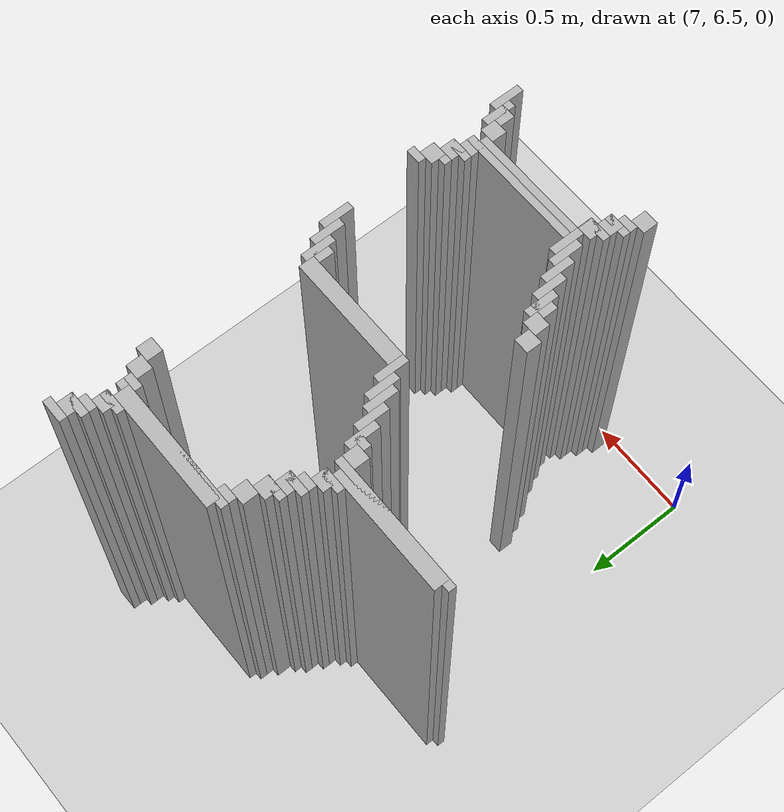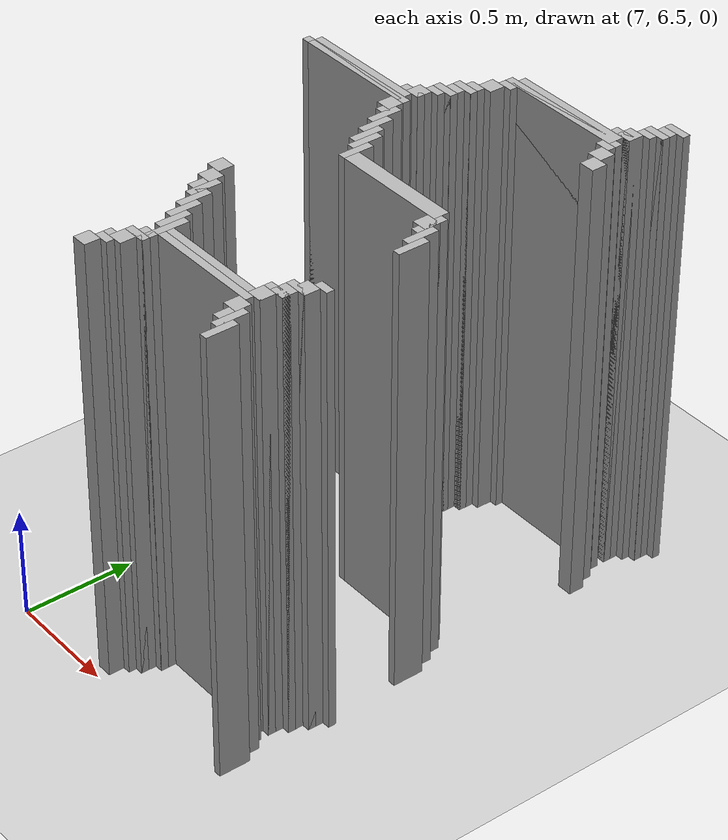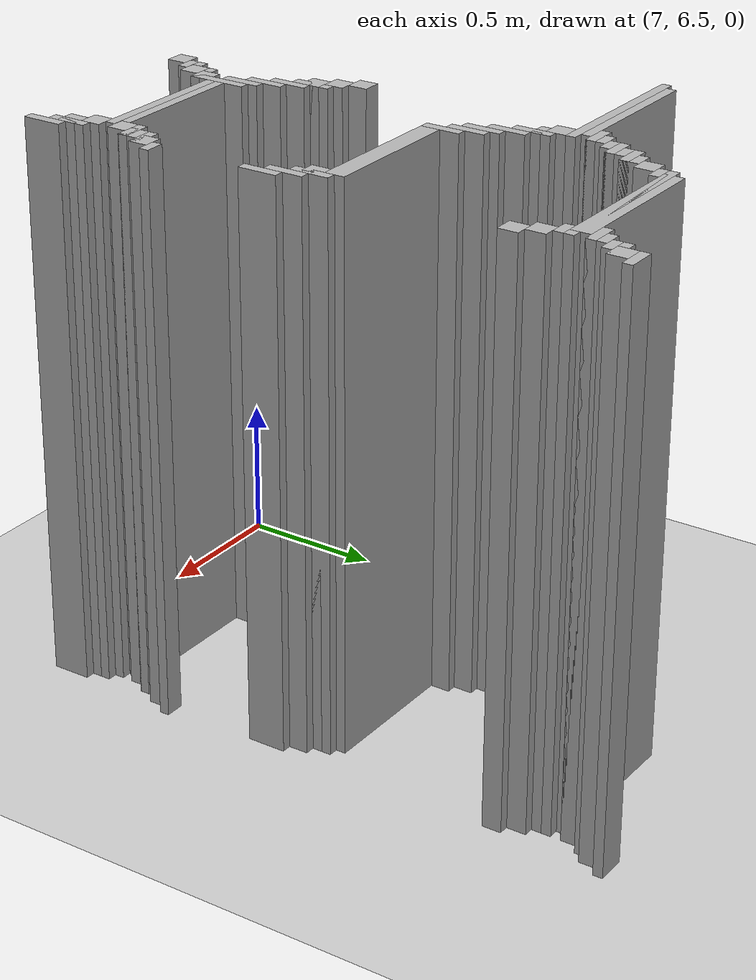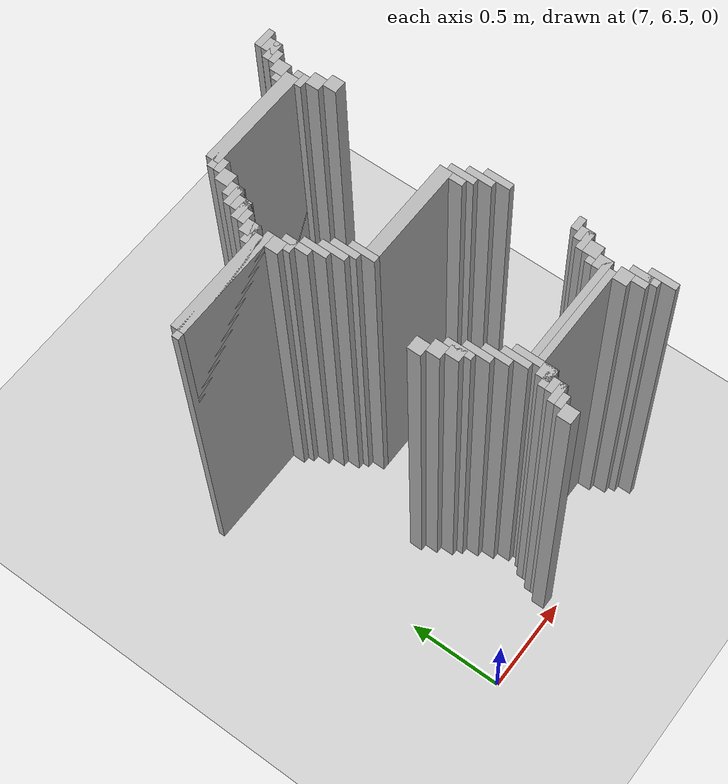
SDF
<sdf version="1.6">
 <world name="slam_world">
  <model name="ground_plane">
   <static>true</static>
   <link name="link">
    <collision name="collision">
     <geometry><plane><normal>0 0 1</normal><size>100 100</size></plane></geometry>
    </collision>
    <visual name="visual">
     <geometry><plane><normal>0 0 1</normal><size>100 100</size></plane></geometry>
     <material>
      <ambient>0.8 0.8 0.8 1</ambient>
      <diffuse>0.8 0.8 0.8 1</diffuse>
      <specular>0.8 0.8 0.8 1</specular>
     </material>
    </visual>
   </link>
  </model>
  <model name="wall_2896">
   <static>true</static>
   <pose>8.230858468677495 8.718097447795824 1.0 0 0 0</pose>
   <link name="link">
    <collision name="collision">
     <geometry><box><size>0.10440835266821345 0.03480278422273782 2.0</size></box></geometry>
    </collision>
    <visual name="visual">
     <geometry><box><size>0.10440835266821345 0.03480278422273782 2.0</size></box></geometry>
     <material><ambient>0.5 0.5 0.5 1</ambient><diffuse>0.7 0.7 0.7 1</diffuse></material>
    </visual>
   </link>
  </model>
  <model name="wall_2910">
   <static>true</static>
   <pose>8.213457076566124 8.665893271461716 1.0 0 0 0</pose>
   <link name="link">
    <collision name="collision">
     <geometry><box><size>0.06960556844547564 0.06960556844547564 2.0</size></box></geometry>
    </collision>
    <visual name="visual">
     <geometry><box><size>0.06960556844547564 0.06960556844547564 2.0</size></box></geometry>
     <material><ambient>0.5 0.5 0.5 1</ambient><diffuse>0.7 0.7 0.7 1</diffuse></material>
    </visual>
   </link>
  </model>
  <model name="wall_2922">
   <static>true</static>
   <pose>8.196055684454755 8.648491879350347 1.0 0 0 0</pose>
   <link name="link">
    <collision name="collision">
     <geometry><box><size>0.10440835266821345 0.03480278422273782 2.0</size></box></geometry>
    </collision>
    <visual name="visual">
     <geometry><box><size>0.10440835266821345 0.03480278422273782 2.0</size></box></geometry>
     <material><ambient>0.5 0.5 0.5 1</ambient><diffuse>0.7 0.7 0.7 1</diffuse></material>
    </visual>
   </link>
  </model>
  <model name="wall_2932">
   <static>true</static>
   <pose>8.178654292343387 8.61368909512761 1.0 0 0 0</pose>
   <link name="link">
    <collision name="collision">
     <geometry><box><size>0.06960556844547564 0.03480278422273782 2.0</size></box></geometry>
    </collision>
    <visual name="visual">
     <geometry><box><size>0.06960556844547564 0.03480278422273782 2.0</size></box></geometry>
     <material><ambient>0.5 0.5 0.5 1</ambient><diffuse>0.7 0.7 0.7 1</diffuse></material>
    </visual>
   </link>
  </model>
  <model name="wall_2943">
   <static>true</static>
   <pose>8.14385150812065 8.561484918793504 1.0 0 0 0</pose>
   <link name="link">
    <collision name="collision">
     <geometry><box><size>0.06960556844547564 0.06960556844547564 2.0</size></box></geometry>
    </collision>
    <visual name="visual">
     <geometry><box><size>0.06960556844547564 0.06960556844547564 2.0</size></box></geometry>
     <material><ambient>0.5 0.5 0.5 1</ambient><diffuse>0.7 0.7 0.7 1</diffuse></material>
    </visual>
   </link>
  </model>
  <model name="wall_2958">
   <static>true</static>
   <pose>8.12645011600928 8.544083526682135 1.0 0 0 0</pose>
   <link name="link">
    <collision name="collision">
     <geometry><box><size>0.10440835266821345 0.03480278422273782 2.0</size></box></geometry>
    </collision>
    <visual name="visual">
     <geometry><box><size>0.10440835266821345 0.03480278422273782 2.0</size></box></geometry>
     <material><ambient>0.5 0.5 0.5 1</ambient><diffuse>0.7 0.7 0.7 1</diffuse></material>
    </visual>
   </link>
  </model>
  <model name="wall_2970">
   <static>true</static>
   <pose>7.865429234338746 8.491879350348027 1.0 0 0 0</pose>
   <link name="link">
    <collision name="collision">
     <geometry><box><size>0.5568445475638051 0.06960556844547564 2.0</size></box></geometry>
    </collision>
    <visual name="visual">
     <geometry><box><size>0.5568445475638051 0.06960556844547564 2.0</size></box></geometry>
     <material><ambient>0.5 0.5 0.5 1</ambient><diffuse>0.7 0.7 0.7 1</diffuse></material>
    </visual>
   </link>
  </model>
  <model name="wall_2980">
   <static>true</static>
   <pose>7.865429234338746 8.474477958236658 1.0 0 0 0</pose>
   <link name="link">
    <collision name="collision">
     <geometry><box><size>0.6264501160092807 0.03480278422273782 2.0</size></box></geometry>
    </collision>
    <visual name="visual">
     <geometry><box><size>0.6264501160092807 0.03480278422273782 2.0</size></box></geometry>
     <material><ambient>0.5 0.5 0.5 1</ambient><diffuse>0.7 0.7 0.7 1</diffuse></material>
    </visual>
   </link>
  </model>
  <model name="wall_2991">
   <static>true</static>
   <pose>7.587006960556844 8.43967517401392 1.0 0 0 0</pose>
   <link name="link">
    <collision name="collision">
     <geometry><box><size>0.06960556844547564 0.03480278422273782 2.0</size></box></geometry>
    </collision>
    <visual name="visual">
     <geometry><box><size>0.06960556844547564 0.03480278422273782 2.0</size></box></geometry>
     <material><ambient>0.5 0.5 0.5 1</ambient><diffuse>0.7 0.7 0.7 1</diffuse></material>
    </visual>
   </link>
  </model>
  <model name="wall_2992">
   <static>true</static>
   <pose>8.14385150812065 8.43967517401392 1.0 0 0 0</pose>
   <link name="link">
    <collision name="collision">
     <geometry><box><size>0.06960556844547564 0.03480278422273782 2.0</size></box></geometry>
    </collision>
    <visual name="visual">
     <geometry><box><size>0.06960556844547564 0.03480278422273782 2.0</size></box></geometry>
     <material><ambient>0.5 0.5 0.5 1</ambient><diffuse>0.7 0.7 0.7 1</diffuse></material>
    </visual>
   </link>
  </model>
  <model name="wall_3004">
   <static>true</static>
   <pose>7.552204176334106 8.387470997679815 1.0 0 0 0</pose>
   <link name="link">
    <collision name="collision">
     <geometry><box><size>0.06960556844547564 0.06960556844547564 2.0</size></box></geometry>
    </collision>
    <visual name="visual">
     <geometry><box><size>0.06960556844547564 0.06960556844547564 2.0</size></box></geometry>
     <material><ambient>0.5 0.5 0.5 1</ambient><diffuse>0.7 0.7 0.7 1</diffuse></material>
    </visual>
   </link>
  </model>
  <model name="wall_3005">
   <static>true</static>
   <pose>8.178654292343387 8.387470997679815 1.0 0 0 0</pose>
   <link name="link">
    <collision name="collision">
     <geometry><box><size>0.06960556844547564 0.06960556844547564 2.0</size></box></geometry>
    </collision>
    <visual name="visual">
     <geometry><box><size>0.06960556844547564 0.06960556844547564 2.0</size></box></geometry>
     <material><ambient>0.5 0.5 0.5 1</ambient><diffuse>0.7 0.7 0.7 1</diffuse></material>
    </visual>
   </link>
  </model>
  <model name="wall_3017">
   <static>true</static>
   <pose>7.517401392111369 8.317865429234338 1.0 0 0 0</pose>
   <link name="link">
    <collision name="collision">
     <geometry><box><size>0.06960556844547564 0.06960556844547564 2.0</size></box></geometry>
    </collision>
    <visual name="visual">
     <geometry><box><size>0.06960556844547564 0.06960556844547564 2.0</size></box></geometry>
     <material><ambient>0.5 0.5 0.5 1</ambient><diffuse>0.7 0.7 0.7 1</diffuse></material>
    </visual>
   </link>
  </model>
  <model name="wall_3018">
   <static>true</static>
   <pose>8.213457076566124 8.317865429234338 1.0 0 0 0</pose>
   <link name="link">
    <collision name="collision">
     <geometry><box><size>0.06960556844547564 0.06960556844547564 2.0</size></box></geometry>
    </collision>
    <visual name="visual">
     <geometry><box><size>0.06960556844547564 0.06960556844547564 2.0</size></box></geometry>
     <material><ambient>0.5 0.5 0.5 1</ambient><diffuse>0.7 0.7 0.7 1</diffuse></material>
    </visual>
   </link>
  </model>
  <model name="wall_3030">
   <static>true</static>
   <pose>7.5 8.30046403712297 1.0 0 0 0</pose>
   <link name="link">
    <collision name="collision">
     <geometry><box><size>0.10440835266821345 0.03480278422273782 2.0</size></box></geometry>
    </collision>
    <visual name="visual">
     <geometry><box><size>0.10440835266821345 0.03480278422273782 2.0</size></box></geometry>
     <material><ambient>0.5 0.5 0.5 1</ambient><diffuse>0.7 0.7 0.7 1</diffuse></material>
    </visual>
   </link>
  </model>
  <model name="wall_3042">
   <static>true</static>
   <pose>7.48259860788863 8.248259860788863 1.0 0 0 0</pose>
   <link name="link">
    <collision name="collision">
     <geometry><box><size>0.06960556844547564 0.06960556844547564 2.0</size></box></geometry>
    </collision>
    <visual name="visual">
     <geometry><box><size>0.06960556844547564 0.06960556844547564 2.0</size></box></geometry>
     <material><ambient>0.5 0.5 0.5 1</ambient><diffuse>0.7 0.7 0.7 1</diffuse></material>
    </visual>
   </link>
  </model>
  <model name="wall_3054">
   <static>true</static>
   <pose>7.465197215777262 8.230858468677495 1.0 0 0 0</pose>
   <link name="link">
    <collision name="collision">
     <geometry><box><size>0.10440835266821345 0.03480278422273782 2.0</size></box></geometry>
    </collision>
    <visual name="visual">
     <geometry><box><size>0.10440835266821345 0.03480278422273782 2.0</size></box></geometry>
     <material><ambient>0.5 0.5 0.5 1</ambient><diffuse>0.7 0.7 0.7 1</diffuse></material>
    </visual>
   </link>
  </model>
  <model name="wall_3066">
   <static>true</static>
   <pose>7.447795823665893 8.196055684454755 1.0 0 0 0</pose>
   <link name="link">
    <collision name="collision">
     <geometry><box><size>0.06960556844547564 0.03480278422273782 2.0</size></box></geometry>
    </collision>
    <visual name="visual">
     <geometry><box><size>0.06960556844547564 0.03480278422273782 2.0</size></box></geometry>
     <material><ambient>0.5 0.5 0.5 1</ambient><diffuse>0.7 0.7 0.7 1</diffuse></material>
    </visual>
   </link>
  </model>
  <model name="wall_3076">
   <static>true</static>
   <pose>7.412993039443156 8.14385150812065 1.0 0 0 0</pose>
   <link name="link">
    <collision name="collision">
     <geometry><box><size>0.06960556844547564 0.06960556844547564 2.0</size></box></geometry>
    </collision>
    <visual name="visual">
     <geometry><box><size>0.06960556844547564 0.06960556844547564 2.0</size></box></geometry>
     <material><ambient>0.5 0.5 0.5 1</ambient><diffuse>0.7 0.7 0.7 1</diffuse></material>
    </visual>
   </link>
  </model>
  <model name="wall_3088">
   <static>true</static>
   <pose>7.395591647331786 8.12645011600928 1.0 0 0 0</pose>
   <link name="link">
    <collision name="collision">
     <geometry><box><size>0.10440835266821345 0.03480278422273782 2.0</size></box></geometry>
    </collision>
    <visual name="visual">
     <geometry><box><size>0.10440835266821345 0.03480278422273782 2.0</size></box></geometry>
     <material><ambient>0.5 0.5 0.5 1</ambient><diffuse>0.7 0.7 0.7 1</diffuse></material>
    </visual>
   </link>
  </model>
  <model name="wall_3101">
   <static>true</static>
   <pose>7.134570765661253 8.074245939675174 1.0 0 0 0</pose>
   <link name="link">
    <collision name="collision">
     <geometry><box><size>0.5568445475638051 0.06960556844547564 2.0</size></box></geometry>
    </collision>
    <visual name="visual">
     <geometry><box><size>0.5568445475638051 0.06960556844547564 2.0</size></box></geometry>
     <material><ambient>0.5 0.5 0.5 1</ambient><diffuse>0.7 0.7 0.7 1</diffuse></material>
    </visual>
   </link>
  </model>
  <model name="wall_3110">
   <static>true</static>
   <pose>7.134570765661253 8.056844547563804 1.0 0 0 0</pose>
   <link name="link">
    <collision name="collision">
     <geometry><box><size>0.6264501160092807 0.03480278422273782 2.0</size></box></geometry>
    </collision>
    <visual name="visual">
     <geometry><box><size>0.6264501160092807 0.03480278422273782 2.0</size></box></geometry>
     <material><ambient>0.5 0.5 0.5 1</ambient><diffuse>0.7 0.7 0.7 1</diffuse></material>
    </visual>
   </link>
  </model>
  <model name="wall_3118">
   <static>true</static>
   <pose>7.412993039443156 8.004640371229698 1.0 0 0 0</pose>
   <link name="link">
    <collision name="collision">
     <geometry><box><size>0.06960556844547564 0.06960556844547564 2.0</size></box></geometry>
    </collision>
    <visual name="visual">
     <geometry><box><size>0.06960556844547564 0.06960556844547564 2.0</size></box></geometry>
     <material><ambient>0.5 0.5 0.5 1</ambient><diffuse>0.7 0.7 0.7 1</diffuse></material>
    </visual>
   </link>
  </model>
  <model name="wall_3127">
   <static>true</static>
   <pose>7.465197215777262 7.935034802784222 1.0 0 0 0</pose>
   <link name="link">
    <collision name="collision">
     <geometry><box><size>0.03480278422273782 0.13921113689095127 2.0</size></box></geometry>
    </collision>
    <visual name="visual">
     <geometry><box><size>0.03480278422273782 0.13921113689095127 2.0</size></box></geometry>
     <material><ambient>0.5 0.5 0.5 1</ambient><diffuse>0.7 0.7 0.7 1</diffuse></material>
    </visual>
   </link>
  </model>
  <model name="wall_3134">
   <static>true</static>
   <pose>7.447795823665893 7.952436194895592 1.0 0 0 0</pose>
   <link name="link">
    <collision name="collision">
     <geometry><box><size>0.06960556844547564 0.03480278422273782 2.0</size></box></geometry>
    </collision>
    <visual name="visual">
     <geometry><box><size>0.06960556844547564 0.03480278422273782 2.0</size></box></geometry>
     <material><ambient>0.5 0.5 0.5 1</ambient><diffuse>0.7 0.7 0.7 1</diffuse></material>
    </visual>
   </link>
  </model>
  <model name="wall_3141">
   <static>true</static>
   <pose>7.5 7.865429234338746 1.0 0 0 0</pose>
   <link name="link">
    <collision name="collision">
     <geometry><box><size>0.03480278422273782 0.13921113689095127 2.0</size></box></geometry>
    </collision>
    <visual name="visual">
     <geometry><box><size>0.03480278422273782 0.13921113689095127 2.0</size></box></geometry>
     <material><ambient>0.5 0.5 0.5 1</ambient><diffuse>0.7 0.7 0.7 1</diffuse></material>
    </visual>
   </link>
  </model>
  <model name="wall_3150">
   <static>true</static>
   <pose>7.534802784222737 7.795823665893272 1.0 0 0 0</pose>
   <link name="link">
    <collision name="collision">
     <geometry><box><size>0.03480278422273782 0.13921113689095127 2.0</size></box></geometry>
    </collision>
    <visual name="visual">
     <geometry><box><size>0.03480278422273782 0.13921113689095127 2.0</size></box></geometry>
     <material><ambient>0.5 0.5 0.5 1</ambient><diffuse>0.7 0.7 0.7 1</diffuse></material>
    </visual>
   </link>
  </model>
  <model name="wall_3159">
   <static>true</static>
   <pose>7.569605568445476 7.761020881670533 1.0 0 0 0</pose>
   <link name="link">
    <collision name="collision">
     <geometry><box><size>0.03480278422273782 0.13921113689095127 2.0</size></box></geometry>
    </collision>
    <visual name="visual">
     <geometry><box><size>0.03480278422273782 0.13921113689095127 2.0</size></box></geometry>
     <material><ambient>0.5 0.5 0.5 1</ambient><diffuse>0.7 0.7 0.7 1</diffuse></material>
    </visual>
   </link>
  </model>
  <model name="wall_3171">
   <static>true</static>
   <pose>7.604408352668213 7.691415313225058 1.0 0 0 0</pose>
   <link name="link">
    <collision name="collision">
     <geometry><box><size>0.03480278422273782 0.13921113689095127 2.0</size></box></geometry>
    </collision>
    <visual name="visual">
     <geometry><box><size>0.03480278422273782 0.13921113689095127 2.0</size></box></geometry>
     <material><ambient>0.5 0.5 0.5 1</ambient><diffuse>0.7 0.7 0.7 1</diffuse></material>
    </visual>
   </link>
  </model>
  <model name="wall_3185">
   <static>true</static>
   <pose>7.882830626450116 7.65661252900232 1.0 0 0 0</pose>
   <link name="link">
    <collision name="collision">
     <geometry><box><size>0.5220417633410672 0.06960556844547564 2.0</size></box></geometry>
    </collision>
    <visual name="visual">
     <geometry><box><size>0.5220417633410672 0.06960556844547564 2.0</size></box></geometry>
     <material><ambient>0.5 0.5 0.5 1</ambient><diffuse>0.7 0.7 0.7 1</diffuse></material>
    </visual>
   </link>
  </model>
  <model name="wall_3199">
   <static>true</static>
   <pose>8.161252900232018 7.587006960556844 1.0 0 0 0</pose>
   <link name="link">
    <collision name="collision">
     <geometry><box><size>0.03480278422273782 0.13921113689095127 2.0</size></box></geometry>
    </collision>
    <visual name="visual">
     <geometry><box><size>0.03480278422273782 0.13921113689095127 2.0</size></box></geometry>
     <material><ambient>0.5 0.5 0.5 1</ambient><diffuse>0.7 0.7 0.7 1</diffuse></material>
    </visual>
   </link>
  </model>
  <model name="wall_3212">
   <static>true</static>
   <pose>8.14385150812065 7.587006960556844 1.0 0 0 0</pose>
   <link name="link">
    <collision name="collision">
     <geometry><box><size>0.06960556844547564 0.06960556844547564 2.0</size></box></geometry>
    </collision>
    <visual name="visual">
     <geometry><box><size>0.06960556844547564 0.06960556844547564 2.0</size></box></geometry>
     <material><ambient>0.5 0.5 0.5 1</ambient><diffuse>0.7 0.7 0.7 1</diffuse></material>
    </visual>
   </link>
  </model>
  <model name="wall_3225">
   <static>true</static>
   <pose>8.196055684454755 7.517401392111369 1.0 0 0 0</pose>
   <link name="link">
    <collision name="collision">
     <geometry><box><size>0.03480278422273782 0.13921113689095127 2.0</size></box></geometry>
    </collision>
    <visual name="visual">
     <geometry><box><size>0.03480278422273782 0.13921113689095127 2.0</size></box></geometry>
     <material><ambient>0.5 0.5 0.5 1</ambient><diffuse>0.7 0.7 0.7 1</diffuse></material>
    </visual>
   </link>
  </model>
  <model name="wall_3247">
   <static>true</static>
   <pose>8.230858468677495 7.447795823665893 1.0 0 0 0</pose>
   <link name="link">
    <collision name="collision">
     <geometry><box><size>0.03480278422273782 0.13921113689095127 2.0</size></box></geometry>
    </collision>
    <visual name="visual">
     <geometry><box><size>0.03480278422273782 0.13921113689095127 2.0</size></box></geometry>
     <material><ambient>0.5 0.5 0.5 1</ambient><diffuse>0.7 0.7 0.7 1</diffuse></material>
    </visual>
   </link>
  </model>
  <model name="wall_3312">
   <static>true</static>
   <pose>7.378190255220417 7.238979118329466 1.0 0 0 0</pose>
   <link name="link">
    <collision name="collision">
     <geometry><box><size>0.06960556844547564 0.06960556844547564 2.0</size></box></geometry>
    </collision>
    <visual name="visual">
     <geometry><box><size>0.06960556844547564 0.06960556844547564 2.0</size></box></geometry>
     <material><ambient>0.5 0.5 0.5 1</ambient><diffuse>0.7 0.7 0.7 1</diffuse></material>
    </visual>
   </link>
  </model>
  <model name="wall_3323">
   <static>true</static>
   <pose>7.412993039443156 7.16937354988399 1.0 0 0 0</pose>
   <link name="link">
    <collision name="collision">
     <geometry><box><size>0.06960556844547564 0.06960556844547564 2.0</size></box></geometry>
    </collision>
    <visual name="visual">
     <geometry><box><size>0.06960556844547564 0.06960556844547564 2.0</size></box></geometry>
     <material><ambient>0.5 0.5 0.5 1</ambient><diffuse>0.7 0.7 0.7 1</diffuse></material>
    </visual>
   </link>
  </model>
  <model name="wall_3335">
   <static>true</static>
   <pose>7.465197215777262 7.099767981438514 1.0 0 0 0</pose>
   <link name="link">
    <collision name="collision">
     <geometry><box><size>0.03480278422273782 0.13921113689095127 2.0</size></box></geometry>
    </collision>
    <visual name="visual">
     <geometry><box><size>0.03480278422273782 0.13921113689095127 2.0</size></box></geometry>
     <material><ambient>0.5 0.5 0.5 1</ambient><diffuse>0.7 0.7 0.7 1</diffuse></material>
    </visual>
   </link>
  </model>
  <model name="wall_3347">
   <static>true</static>
   <pose>7.447795823665893 7.099767981438514 1.0 0 0 0</pose>
   <link name="link">
    <collision name="collision">
     <geometry><box><size>0.06960556844547564 0.06960556844547564 2.0</size></box></geometry>
    </collision>
    <visual name="visual">
     <geometry><box><size>0.06960556844547564 0.06960556844547564 2.0</size></box></geometry>
     <material><ambient>0.5 0.5 0.5 1</ambient><diffuse>0.7 0.7 0.7 1</diffuse></material>
    </visual>
   </link>
  </model>
  <model name="wall_3359">
   <static>true</static>
   <pose>7.5 7.03016241299304 1.0 0 0 0</pose>
   <link name="link">
    <collision name="collision">
     <geometry><box><size>0.03480278422273782 0.13921113689095127 2.0</size></box></geometry>
    </collision>
    <visual name="visual">
     <geometry><box><size>0.03480278422273782 0.13921113689095127 2.0</size></box></geometry>
     <material><ambient>0.5 0.5 0.5 1</ambient><diffuse>0.7 0.7 0.7 1</diffuse></material>
    </visual>
   </link>
  </model>
  <model name="wall_3368">
   <static>true</static>
   <pose>8.248259860788863 7.047563805104408 1.0 0 0 0</pose>
   <link name="link">
    <collision name="collision">
     <geometry><box><size>0.06960556844547564 0.03480278422273782 2.0</size></box></geometry>
    </collision>
    <visual name="visual">
     <geometry><box><size>0.06960556844547564 0.03480278422273782 2.0</size></box></geometry>
     <material><ambient>0.5 0.5 0.5 1</ambient><diffuse>0.7 0.7 0.7 1</diffuse></material>
    </visual>
   </link>
  </model>
  <model name="wall_3376">
   <static>true</static>
   <pose>7.534802784222737 6.960556844547564 1.0 0 0 0</pose>
   <link name="link">
    <collision name="collision">
     <geometry><box><size>0.03480278422273782 0.13921113689095127 2.0</size></box></geometry>
    </collision>
    <visual name="visual">
     <geometry><box><size>0.03480278422273782 0.13921113689095127 2.0</size></box></geometry>
     <material><ambient>0.5 0.5 0.5 1</ambient><diffuse>0.7 0.7 0.7 1</diffuse></material>
    </visual>
   </link>
  </model>
  <model name="wall_3377">
   <static>true</static>
   <pose>8.213457076566124 6.995359628770301 1.0 0 0 0</pose>
   <link name="link">
    <collision name="collision">
     <geometry><box><size>0.06960556844547564 0.06960556844547564 2.0</size></box></geometry>
    </collision>
    <visual name="visual">
     <geometry><box><size>0.06960556844547564 0.06960556844547564 2.0</size></box></geometry>
     <material><ambient>0.5 0.5 0.5 1</ambient><diffuse>0.7 0.7 0.7 1</diffuse></material>
    </visual>
   </link>
  </model>
  <model name="wall_3385">
   <static>true</static>
   <pose>8.196055684454755 6.977958236658933 1.0 0 0 0</pose>
   <link name="link">
    <collision name="collision">
     <geometry><box><size>0.10440835266821345 0.03480278422273782 2.0</size></box></geometry>
    </collision>
    <visual name="visual">
     <geometry><box><size>0.10440835266821345 0.03480278422273782 2.0</size></box></geometry>
     <material><ambient>0.5 0.5 0.5 1</ambient><diffuse>0.7 0.7 0.7 1</diffuse></material>
    </visual>
   </link>
  </model>
  <model name="wall_3393">
   <static>true</static>
   <pose>7.569605568445476 6.890951276102088 1.0 0 0 0</pose>
   <link name="link">
    <collision name="collision">
     <geometry><box><size>0.03480278422273782 0.13921113689095127 2.0</size></box></geometry>
    </collision>
    <visual name="visual">
     <geometry><box><size>0.03480278422273782 0.13921113689095127 2.0</size></box></geometry>
     <material><ambient>0.5 0.5 0.5 1</ambient><diffuse>0.7 0.7 0.7 1</diffuse></material>
    </visual>
   </link>
  </model>
  <model name="wall_3394">
   <static>true</static>
   <pose>8.178654292343387 6.9257540603248255 1.0 0 0 0</pose>
   <link name="link">
    <collision name="collision">
     <geometry><box><size>0.06960556844547564 0.06960556844547564 2.0</size></box></geometry>
    </collision>
    <visual name="visual">
     <geometry><box><size>0.06960556844547564 0.06960556844547564 2.0</size></box></geometry>
     <material><ambient>0.5 0.5 0.5 1</ambient><diffuse>0.7 0.7 0.7 1</diffuse></material>
    </visual>
   </link>
  </model>
  <model name="wall_3405">
   <static>true</static>
   <pose>7.604408352668213 6.821345707656612 1.0 0 0 0</pose>
   <link name="link">
    <collision name="collision">
     <geometry><box><size>0.03480278422273782 0.2088167053364269 2.0</size></box></geometry>
    </collision>
    <visual name="visual">
     <geometry><box><size>0.03480278422273782 0.2088167053364269 2.0</size></box></geometry>
     <material><ambient>0.5 0.5 0.5 1</ambient><diffuse>0.7 0.7 0.7 1</diffuse></material>
    </visual>
   </link>
  </model>
  <model name="wall_3406">
   <static>true</static>
   <pose>8.161252900232018 6.908352668213457 1.0 0 0 0</pose>
   <link name="link">
    <collision name="collision">
     <geometry><box><size>0.10440835266821345 0.03480278422273782 2.0</size></box></geometry>
    </collision>
    <visual name="visual">
     <geometry><box><size>0.10440835266821345 0.03480278422273782 2.0</size></box></geometry>
     <material><ambient>0.5 0.5 0.5 1</ambient><diffuse>0.7 0.7 0.7 1</diffuse></material>
    </visual>
   </link>
  </model>
  <model name="wall_3414">
   <static>true</static>
   <pose>8.14385150812065 6.85614849187935 1.0 0 0 0</pose>
   <link name="link">
    <collision name="collision">
     <geometry><box><size>0.06960556844547564 0.06960556844547564 2.0</size></box></geometry>
    </collision>
    <visual name="visual">
     <geometry><box><size>0.06960556844547564 0.06960556844547564 2.0</size></box></geometry>
     <material><ambient>0.5 0.5 0.5 1</ambient><diffuse>0.7 0.7 0.7 1</diffuse></material>
    </visual>
   </link>
  </model>
  <model name="wall_3423">
   <static>true</static>
   <pose>7.900232018561485 6.838747099767981 1.0 0 0 0</pose>
   <link name="link">
    <collision name="collision">
     <geometry><box><size>0.5568445475638051 0.03480278422273782 2.0</size></box></geometry>
    </collision>
    <visual name="visual">
     <geometry><box><size>0.5568445475638051 0.03480278422273782 2.0</size></box></geometry>
     <material><ambient>0.5 0.5 0.5 1</ambient><diffuse>0.7 0.7 0.7 1</diffuse></material>
    </visual>
   </link>
  </model>
  <model name="wall_3433">
   <static>true</static>
   <pose>7.882830626450116 6.803944315545244 1.0 0 0 0</pose>
   <link name="link">
    <collision name="collision">
     <geometry><box><size>0.5220417633410672 0.03480278422273782 2.0</size></box></geometry>
    </collision>
    <visual name="visual">
     <geometry><box><size>0.5220417633410672 0.03480278422273782 2.0</size></box></geometry>
     <material><ambient>0.5 0.5 0.5 1</ambient><diffuse>0.7 0.7 0.7 1</diffuse></material>
    </visual>
   </link>
  </model>
  <model name="wall_3446">
   <static>true</static>
   <pose>7.587006960556844 6.751740139211137 1.0 0 0 0</pose>
   <link name="link">
    <collision name="collision">
     <geometry><box><size>0.06960556844547564 0.06960556844547564 2.0</size></box></geometry>
    </collision>
    <visual name="visual">
     <geometry><box><size>0.06960556844547564 0.06960556844547564 2.0</size></box></geometry>
     <material><ambient>0.5 0.5 0.5 1</ambient><diffuse>0.7 0.7 0.7 1</diffuse></material>
    </visual>
   </link>
  </model>
  <model name="wall_3447">
   <static>true</static>
   <pose>8.14385150812065 6.751740139211137 1.0 0 0 0</pose>
   <link name="link">
    <collision name="collision">
     <geometry><box><size>0.06960556844547564 0.06960556844547564 2.0</size></box></geometry>
    </collision>
    <visual name="visual">
     <geometry><box><size>0.06960556844547564 0.06960556844547564 2.0</size></box></geometry>
     <material><ambient>0.5 0.5 0.5 1</ambient><diffuse>0.7 0.7 0.7 1</diffuse></material>
    </visual>
   </link>
  </model>
  <model name="wall_3466">
   <static>true</static>
   <pose>7.569605568445476 6.734338747099768 1.0 0 0 0</pose>
   <link name="link">
    <collision name="collision">
     <geometry><box><size>0.10440835266821345 0.03480278422273782 2.0</size></box></geometry>
    </collision>
    <visual name="visual">
     <geometry><box><size>0.10440835266821345 0.03480278422273782 2.0</size></box></geometry>
     <material><ambient>0.5 0.5 0.5 1</ambient><diffuse>0.7 0.7 0.7 1</diffuse></material>
    </visual>
   </link>
  </model>
  <model name="wall_3467">
   <static>true</static>
   <pose>8.196055684454755 6.682134570765661 1.0 0 0 0</pose>
   <link name="link">
    <collision name="collision">
     <geometry><box><size>0.03480278422273782 0.13921113689095127 2.0</size></box></geometry>
    </collision>
    <visual name="visual">
     <geometry><box><size>0.03480278422273782 0.13921113689095127 2.0</size></box></geometry>
     <material><ambient>0.5 0.5 0.5 1</ambient><diffuse>0.7 0.7 0.7 1</diffuse></material>
    </visual>
   </link>
  </model>
  <model name="wall_3486">
   <static>true</static>
   <pose>7.552204176334106 6.682134570765661 1.0 0 0 0</pose>
   <link name="link">
    <collision name="collision">
     <geometry><box><size>0.06960556844547564 0.06960556844547564 2.0</size></box></geometry>
    </collision>
    <visual name="visual">
     <geometry><box><size>0.06960556844547564 0.06960556844547564 2.0</size></box></geometry>
     <material><ambient>0.5 0.5 0.5 1</ambient><diffuse>0.7 0.7 0.7 1</diffuse></material>
    </visual>
   </link>
  </model>
  <model name="wall_3487">
   <static>true</static>
   <pose>8.178654292343387 6.682134570765661 1.0 0 0 0</pose>
   <link name="link">
    <collision name="collision">
     <geometry><box><size>0.06960556844547564 0.06960556844547564 2.0</size></box></geometry>
    </collision>
    <visual name="visual">
     <geometry><box><size>0.06960556844547564 0.06960556844547564 2.0</size></box></geometry>
     <material><ambient>0.5 0.5 0.5 1</ambient><diffuse>0.7 0.7 0.7 1</diffuse></material>
    </visual>
   </link>
  </model>
  <model name="wall_3506">
   <static>true</static>
   <pose>7.534802784222737 6.664733178654292 1.0 0 0 0</pose>
   <link name="link">
    <collision name="collision">
     <geometry><box><size>0.10440835266821345 0.03480278422273782 2.0</size></box></geometry>
    </collision>
    <visual name="visual">
     <geometry><box><size>0.10440835266821345 0.03480278422273782 2.0</size></box></geometry>
     <material><ambient>0.5 0.5 0.5 1</ambient><diffuse>0.7 0.7 0.7 1</diffuse></material>
    </visual>
   </link>
  </model>
  <model name="wall_3507">
   <static>true</static>
   <pose>8.230858468677495 6.612529002320185 1.0 0 0 0</pose>
   <link name="link">
    <collision name="collision">
     <geometry><box><size>0.03480278422273782 0.13921113689095127 2.0</size></box></geometry>
    </collision>
    <visual name="visual">
     <geometry><box><size>0.03480278422273782 0.13921113689095127 2.0</size></box></geometry>
     <material><ambient>0.5 0.5 0.5 1</ambient><diffuse>0.7 0.7 0.7 1</diffuse></material>
    </visual>
   </link>
  </model>
  <model name="wall_3521">
   <static>true</static>
   <pose>7.517401392111369 6.629930394431554 1.0 0 0 0</pose>
   <link name="link">
    <collision name="collision">
     <geometry><box><size>0.06960556844547564 0.03480278422273782 2.0</size></box></geometry>
    </collision>
    <visual name="visual">
     <geometry><box><size>0.06960556844547564 0.03480278422273782 2.0</size></box></geometry>
     <material><ambient>0.5 0.5 0.5 1</ambient><diffuse>0.7 0.7 0.7 1</diffuse></material>
    </visual>
   </link>
  </model>
  <model name="wall_3536">
   <static>true</static>
   <pose>7.48259860788863 6.577726218097448 1.0 0 0 0</pose>
   <link name="link">
    <collision name="collision">
     <geometry><box><size>0.06960556844547564 0.06960556844547564 2.0</size></box></geometry>
    </collision>
    <visual name="visual">
     <geometry><box><size>0.06960556844547564 0.06960556844547564 2.0</size></box></geometry>
     <material><ambient>0.5 0.5 0.5 1</ambient><diffuse>0.7 0.7 0.7 1</diffuse></material>
    </visual>
   </link>
  </model>
 </world>
</sdf>
